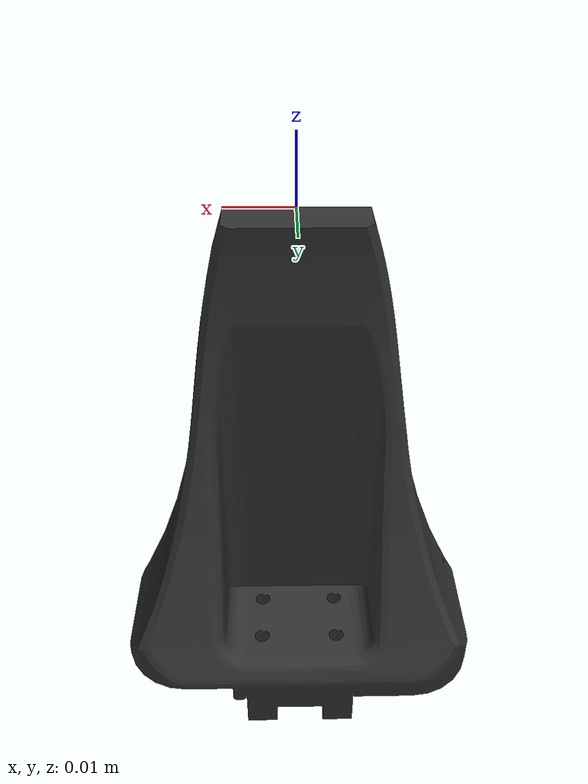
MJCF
<mujoco model="link8">
  <default>
    <default class="visual">
      <geom group="2" type="mesh" contype="0" conaffinity="0"/>
    </default>
    <default class="collision">
      <geom group="3" type="mesh"/>
    </default>
  </default>
  <asset>
    <material name="grey_metal.004" specular="0.5" shininess="0.09604875199999999" rgba="0.191349 0.191349 0.191349 1.000000"/>
    <mesh file="link8.obj"/>
    <mesh file="link8_collision_0.obj"/>
    <mesh file="link8_collision_1.obj"/>
    <mesh file="link8_collision_2.obj"/>
  </asset>
  <worldbody>
    <body name="link8">
      <geom material="grey_metal.004" mesh="link8" class="visual"/>
      <geom mesh="link8_collision_0" rgba="0.740395794814633 0.9949893009807872 0.559572303434638 1" class="collision"/>
      <geom mesh="link8_collision_1" rgba="0.44502579593547975 0.03834426184727091 0.779946225852163 1" class="collision"/>
      <geom mesh="link8_collision_2" rgba="0.29177902606043205 0.05171071380483616 0.18823026337869986 1" class="collision"/>
    </body>
  </worldbody>
</mujoco>
